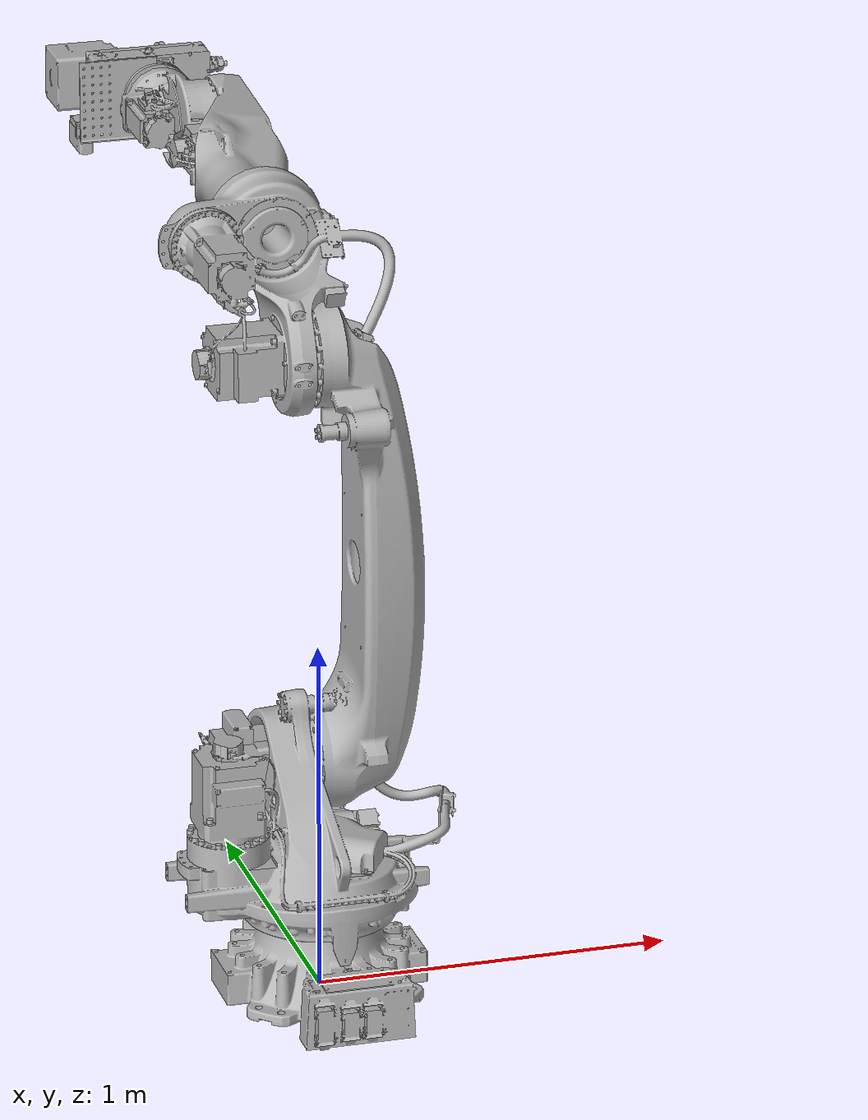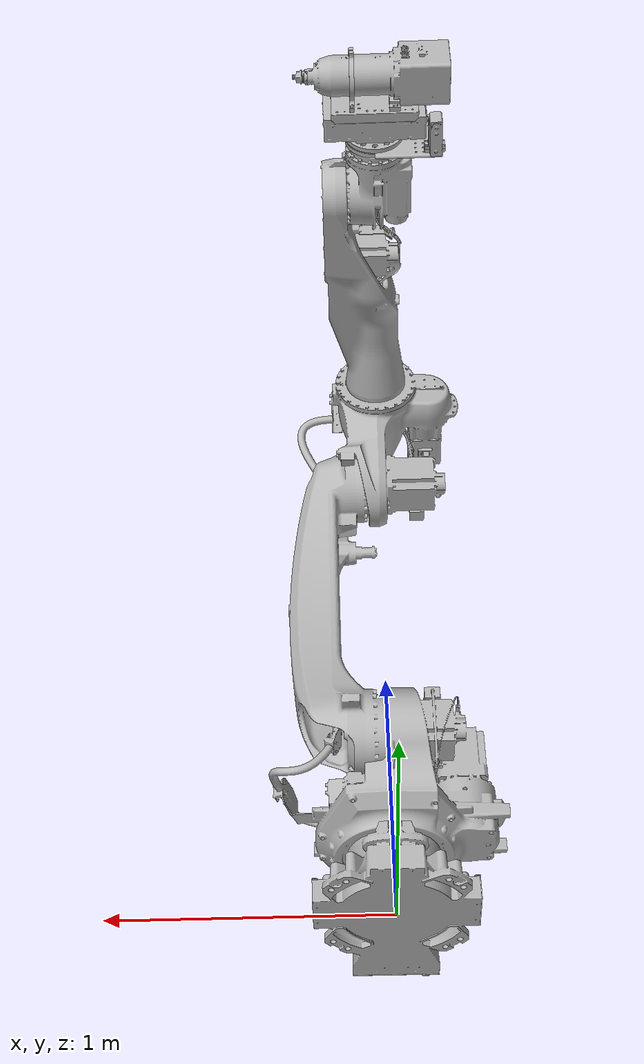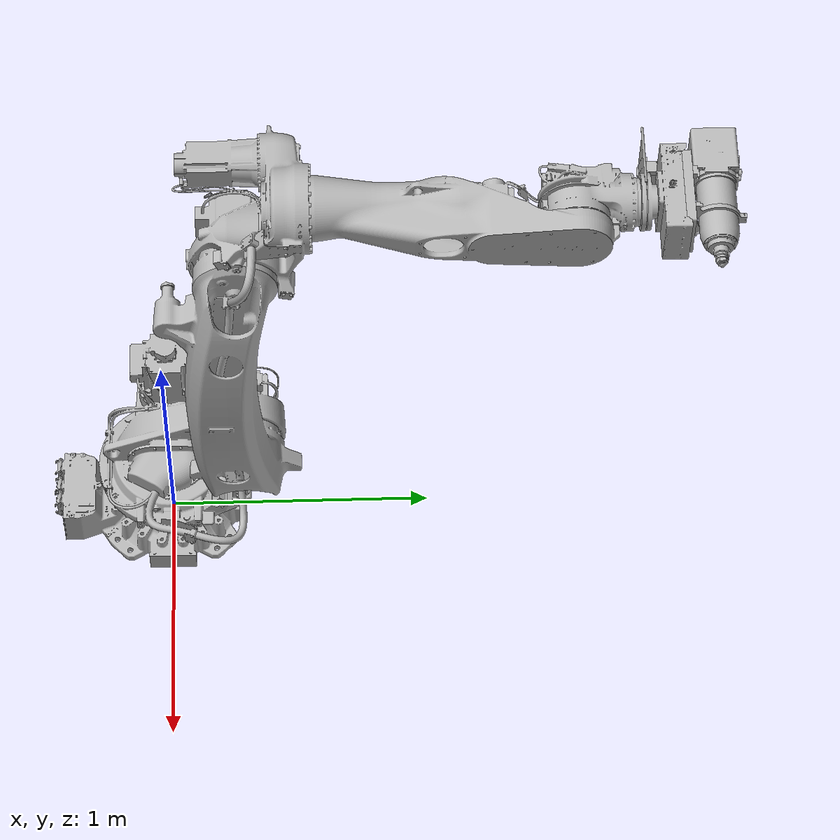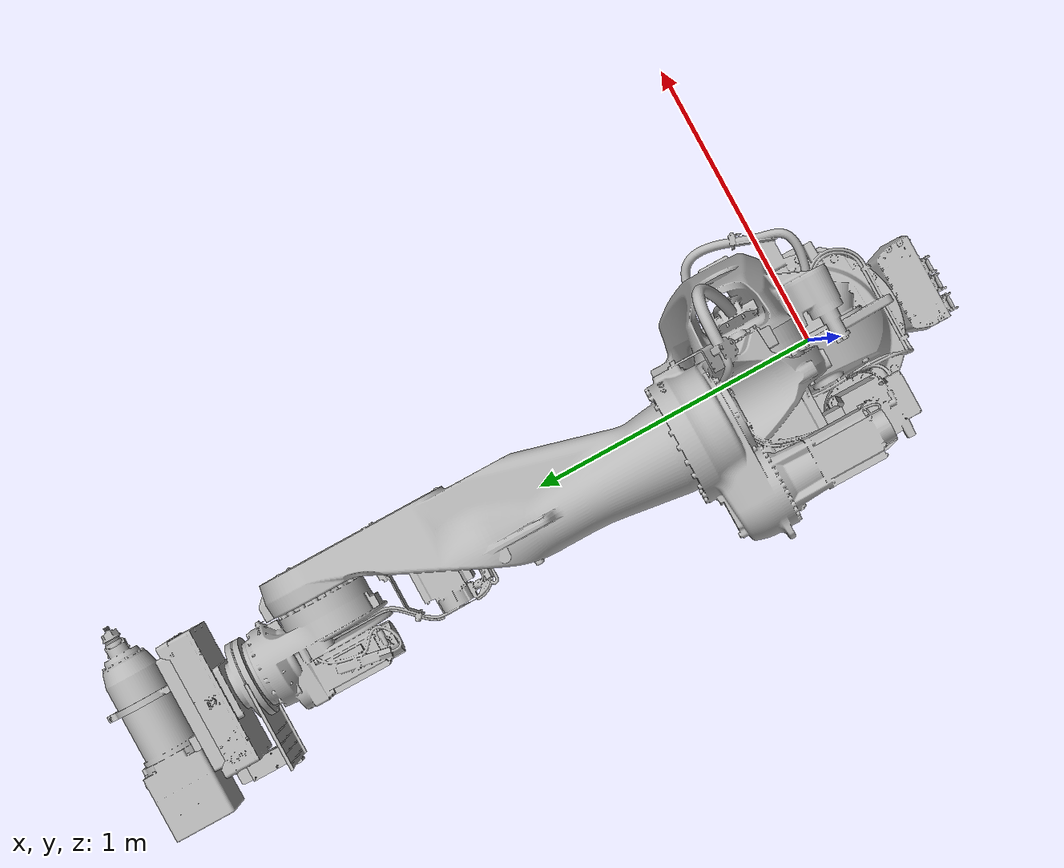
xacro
<?xml version="1.0" ?>
<robot name="grinding_cell_isu" xmlns:xacro="http://www.ros.org/wiki/xacro">

<xacro:include filename="$(find grinding_cell_isu_description)/urdf/materials.xacro" />
<xacro:include filename="$(find grinding_cell_isu_description)/urdf/grinding_cell_isu.ros2control" />
<xacro:include filename="$(find grinding_cell_isu_description)/urdf/grinding_cell_isu.gazebo" />
<link name="base_link">
  <inertial>
    <origin xyz="-0.00023938782124240985 -0.05347092729023973 0.09442085603896697" rpy="0 0 0"/>
    <mass value="333.98868689360233"/>
    <inertia ixx="11.71113" iyy="5.576834" izz="14.859734" ixy="-0.036643" iyz="-0.338236" ixz="0.000917"/>
  </inertial>
  <visual>
    <origin xyz="0 0 0" rpy="0 0 0"/>
    <geometry>
      <mesh filename="file://$(find grinding_cell_isu_description)/meshes/base_link.stl" scale="0.001 0.001 0.001"/>
    </geometry>
    <material name="silver"/>
  </visual>
  <collision>
    <origin xyz="0 0 0" rpy="0 0 0"/>
    <geometry>
      <mesh filename="file://$(find grinding_cell_isu_description)/meshes/base_link.stl" scale="0.001 0.001 0.001"/>
    </geometry>
  </collision>
</link>

<link name="link1_1">
  <inertial>
    <origin xyz="-0.06653895264969915 0.06394271891497666 0.1778261342766808" rpy="0 0 0"/>
    <mass value="566.6327954645911"/>
    <inertia ixx="22.181539" iyy="20.935752" izz="25.337877" ixy="-0.577338" iyz="-3.28915" ixz="3.491837"/>
  </inertial>
  <visual>
    <origin xyz="-0.0 -0.0 -0.234" rpy="0 0 0"/>
    <geometry>
      <mesh filename="file://$(find grinding_cell_isu_description)/meshes/link1_1.stl" scale="0.001 0.001 0.001"/>
    </geometry>
    <material name="silver"/>
  </visual>
  <collision>
    <origin xyz="-0.0 -0.0 -0.234" rpy="0 0 0"/>
    <geometry>
      <mesh filename="file://$(find grinding_cell_isu_description)/meshes/link1_1.stl" scale="0.001 0.001 0.001"/>
    </geometry>
  </collision>
</link>

<link name="link2_1">
  <inertial>
    <origin xyz="0.20305394831555346 -0.03912073071835348 0.5971409899589974" rpy="0 0 0"/>
    <mass value="9.798994384257494"/>
    <inertia ixx="1.764748" iyy="1.76245" izz="0.010409" ixy="0.002422" iyz="-0.005454" ixz="-5.2e-05"/>
  </inertial>
  <visual>
    <origin xyz="-0.006 -0.3 -0.55" rpy="0 0 0"/>
    <geometry>
      <mesh filename="file://$(find grinding_cell_isu_description)/meshes/link2_1.stl" scale="0.001 0.001 0.001"/>
    </geometry>
    <material name="silver"/>
  </visual>
  <collision>
    <origin xyz="-0.006 -0.3 -0.55" rpy="0 0 0"/>
    <geometry>
      <mesh filename="file://$(find grinding_cell_isu_description)/meshes/link2_1.stl" scale="0.001 0.001 0.001"/>
    </geometry>
  </collision>
</link>

<link name="link3_1">
  <inertial>
    <origin xyz="-0.19206722458894557 -0.027909362871369525 0.10530362485936107" rpy="0 0 0"/>
    <mass value="71.44558552488685"/>
    <inertia ixx="1.83895" iyy="2.211138" izz="1.018852" ixy="-0.1937" iyz="0.275653" ixz="0.114685"/>
  </inertial>
  <visual>
    <origin xyz="-0.059 -0.3 -1.74" rpy="0 0 0"/>
    <geometry>
      <mesh filename="file://$(find grinding_cell_isu_description)/meshes/link3_1.stl" scale="0.001 0.001 0.001"/>
    </geometry>
    <material name="silver"/>
  </visual>
  <collision>
    <origin xyz="-0.059 -0.3 -1.74" rpy="0 0 0"/>
    <geometry>
      <mesh filename="file://$(find grinding_cell_isu_description)/meshes/link3_1.stl" scale="0.001 0.001 0.001"/>
    </geometry>
  </collision>
</link>

<link name="link4_1">
  <inertial>
    <origin xyz="0.08488777504484482 0.6137477335056789 0.0006002942177838477" rpy="0 0 0"/>
    <mass value="117.61031632905585"/>
    <inertia ixx="8.618509" iyy="1.178546" izz="8.933092" ixy="-1.495647" iyz="0.014729" ixz="0.006184"/>
  </inertial>
  <visual>
    <origin xyz="-0.0 -0.567 -2.04" rpy="0 0 0"/>
    <geometry>
      <mesh filename="file://$(find grinding_cell_isu_description)/meshes/link4_1.stl" scale="0.001 0.001 0.001"/>
    </geometry>
    <material name="silver"/>
  </visual>
  <collision>
    <origin xyz="-0.0 -0.567 -2.04" rpy="0 0 0"/>
    <geometry>
      <mesh filename="file://$(find grinding_cell_isu_description)/meshes/link4_1.stl" scale="0.001 0.001 0.001"/>
    </geometry>
  </collision>
</link>

<link name="link5_1">
  <inertial>
    <origin xyz="-0.10963928700693486 0.05275619945833565 0.0011382347889319355" rpy="0 0 0"/>
    <mass value="77.96532200729659"/>
    <inertia ixx="0.817944" iyy="0.496492" izz="0.936739" ixy="0.039893" iyz="0.008236" ixz="0.008649"/>
  </inertial>
  <visual>
    <origin xyz="-0.1155 -1.49 -2.04" rpy="0 0 0"/>
    <geometry>
      <mesh filename="file://$(find grinding_cell_isu_description)/meshes/link5_1.stl" scale="0.001 0.001 0.001"/>
    </geometry>
    <material name="silver"/>
  </visual>
  <collision>
    <origin xyz="-0.1155 -1.49 -2.04" rpy="0 0 0"/>
    <geometry>
      <mesh filename="file://$(find grinding_cell_isu_description)/meshes/link5_1.stl" scale="0.001 0.001 0.001"/>
    </geometry>
  </collision>
</link>

<link name="link6_1">
  <inertial>
    <origin xyz="1.0723590035471246e-06 0.007341483930386028 4.5787910352146355e-08" rpy="0 0 0"/>
    <mass value="3.3223589685623236"/>
    <inertia ixx="0.009251" iyy="0.018393" izz="0.00928" ixy="0.0" iyz="0.0" ixz="-0.0"/>
  </inertial>
  <visual>
    <origin xyz="-0.0015 -1.709176 -2.039823" rpy="0 0 0"/>
    <geometry>
      <mesh filename="file://$(find grinding_cell_isu_description)/meshes/link6_1.stl" scale="0.001 0.001 0.001"/>
    </geometry>
    <material name="silver"/>
  </visual>
  <collision>
    <origin xyz="-0.0015 -1.709176 -2.039823" rpy="0 0 0"/>
    <geometry>
      <mesh filename="file://$(find grinding_cell_isu_description)/meshes/link6_1.stl" scale="0.001 0.001 0.001"/>
    </geometry>
  </collision>
</link>

<link name="camera_mount_plate_1">
  <inertial>
    <origin xyz="-0.08012460137644362 0.0015023889998331263 4.578789791764848e-08" rpy="0 0 0"/>
    <mass value="1.8819916346345602"/>
    <inertia ixx="0.008766" iyy="0.023121" izz="0.014362" ixy="-1.3e-05" iyz="0.0" ixz="0.0"/>
  </inertial>
  <visual>
    <origin xyz="-0.001499 -1.725176 -2.039823" rpy="0 0 0"/>
    <geometry>
      <mesh filename="file://$(find grinding_cell_isu_description)/meshes/camera_mount_plate_1.stl" scale="0.001 0.001 0.001"/>
    </geometry>
    <material name="silver"/>
  </visual>
  <collision>
    <origin xyz="-0.001499 -1.725176 -2.039823" rpy="0 0 0"/>
    <geometry>
      <mesh filename="file://$(find grinding_cell_isu_description)/meshes/camera_mount_plate_1.stl" scale="0.001 0.001 0.001"/>
    </geometry>
  </collision>
</link>

<link name="camera_mount_robot_side_1">
  <inertial>
    <origin xyz="-0.012699518879688204 0.00781091419347435 -0.01269995416921299" rpy="0 0 0"/>
    <mass value="0.28900671545824247"/>
    <inertia ixx="4.2e-05" iyy="0.000158" izz="0.000128" ixy="-0.0" iyz="0.0" ixz="0.0"/>
  </inertial>
  <visual>
    <origin xyz="0.189001 -1.728592 -1.963623" rpy="0 0 0"/>
    <geometry>
      <mesh filename="file://$(find grinding_cell_isu_description)/meshes/camera_mount_robot_side_1.stl" scale="0.001 0.001 0.001"/>
    </geometry>
    <material name="silver"/>
  </visual>
  <collision>
    <origin xyz="0.189001 -1.728592 -1.963623" rpy="0 0 0"/>
    <geometry>
      <mesh filename="file://$(find grinding_cell_isu_description)/meshes/camera_mount_robot_side_1.stl" scale="0.001 0.001 0.001"/>
    </geometry>
  </collision>
</link>

<link name="camera_mount_camera_side_1">
  <inertial>
    <origin xyz="-0.0076195188797280045 0.05134002984332997 -3.8754179527700217e-05" rpy="0 0 0"/>
    <mass value="0.8361634896609813"/>
    <inertia ixx="0.001077" iyy="0.000223" izz="0.001217" ixy="0.0" iyz="1e-06" ixz="0.0"/>
  </inertial>
  <visual>
    <origin xyz="0.194081 -1.744213 -1.950923" rpy="0 0 0"/>
    <geometry>
      <mesh filename="file://$(find grinding_cell_isu_description)/meshes/camera_mount_camera_side_1.stl" scale="0.001 0.001 0.001"/>
    </geometry>
    <material name="silver"/>
  </visual>
  <collision>
    <origin xyz="0.194081 -1.744213 -1.950923" rpy="0 0 0"/>
    <geometry>
      <mesh filename="file://$(find grinding_cell_isu_description)/meshes/camera_mount_camera_side_1.stl" scale="0.001 0.001 0.001"/>
    </geometry>
  </collision>
</link>

<link name="pushcorp_adapter_plate_1">
  <inertial>
    <origin xyz="4.811202501983462e-07 0.014498160004371208 4.57879845150444e-08" rpy="0 0 0"/>
    <mass value="5.378742130618471"/>
    <inertia ixx="0.010695" iyy="0.020166" izz="0.010695" ixy="-0.0" iyz="0.0" ixz="0.0"/>
  </inertial>
  <visual>
    <origin xyz="-0.001499 -1.728592 -2.039823" rpy="0 0 0"/>
    <geometry>
      <mesh filename="file://$(find grinding_cell_isu_description)/meshes/pushcorp_adapter_plate_1.stl" scale="0.001 0.001 0.001"/>
    </geometry>
    <material name="silver"/>
  </visual>
  <collision>
    <origin xyz="-0.001499 -1.728592 -2.039823" rpy="0 0 0"/>
    <geometry>
      <mesh filename="file://$(find grinding_cell_isu_description)/meshes/pushcorp_adapter_plate_1.stl" scale="0.001 0.001 0.001"/>
    </geometry>
  </collision>
</link>

<link name="afd_base_1">
  <inertial>
    <origin xyz="-2.0412307203724082e-05 0.04732166606944688 9.191560594912218e-05" rpy="0 0 0"/>
    <mass value="42.10576122334246"/>
    <inertia ixx="0.172045" iyy="0.547331" izz="0.416949" ixy="1.1e-05" iyz="-1.5e-05" ixz="0.000101"/>
  </inertial>
  <visual>
    <origin xyz="-0.001499 -1.766692 -2.039823" rpy="0 0 0"/>
    <geometry>
      <mesh filename="file://$(find grinding_cell_isu_description)/meshes/afd_base_1.stl" scale="0.001 0.001 0.001"/>
    </geometry>
    <material name="silver"/>
  </visual>
  <collision>
    <origin xyz="-0.001499 -1.766692 -2.039823" rpy="0 0 0"/>
    <geometry>
      <mesh filename="file://$(find grinding_cell_isu_description)/meshes/afd_base_1.stl" scale="0.001 0.001 0.001"/>
    </geometry>
  </collision>
</link>

<link name="adf_slide_1">
  <inertial>
    <origin xyz="2.5729909938865736e-05 0.018441351058661626 4.24726317715951e-06" rpy="0 0 0"/>
    <mass value="17.042801472492954"/>
    <inertia ixx="0.060101" iyy="0.181263" izz="0.124996" ixy="-3e-06" iyz="-8e-06" ixz="2e-06"/>
  </inertial>
  <visual>
    <origin xyz="-0.001499 -1.851149 -2.039823" rpy="0 0 0"/>
    <geometry>
      <mesh filename="file://$(find grinding_cell_isu_description)/meshes/adf_slide_1.stl" scale="0.001 0.001 0.001"/>
    </geometry>
    <material name="silver"/>
  </visual>
  <collision>
    <origin xyz="-0.001499 -1.851149 -2.039823" rpy="0 0 0"/>
    <geometry>
      <mesh filename="file://$(find grinding_cell_isu_description)/meshes/adf_slide_1.stl" scale="0.001 0.001 0.001"/>
    </geometry>
  </collision>
</link>

<link name="asm02948-1_1">
  <inertial>
    <origin xyz="0.01205157797336169 0.009687634396200906 0.08255004578789227" rpy="0 0 0"/>
    <mass value="0.563626411808913"/>
    <inertia ixx="0.002201" iyy="0.002234" izz="7.9e-05" ixy="2e-06" iyz="0.0" ixz="-0.0"/>
  </inertial>
  <visual>
    <origin xyz="0.074701 -1.888872 -1.957273" rpy="0 0 0"/>
    <geometry>
      <mesh filename="file://$(find grinding_cell_isu_description)/meshes/asm02948-1_1.stl" scale="0.001 0.001 0.001"/>
    </geometry>
    <material name="silver"/>
  </visual>
  <collision>
    <origin xyz="0.074701 -1.888872 -1.957273" rpy="0 0 0"/>
    <geometry>
      <mesh filename="file://$(find grinding_cell_isu_description)/meshes/asm02948-1_1.stl" scale="0.001 0.001 0.001"/>
    </geometry>
  </collision>
</link>

<link name="asm02658-1_1">
  <inertial>
    <origin xyz="4.811202478499643e-07 0.06686082668387616 -0.08257286288885446" rpy="0 0 0"/>
    <mass value="1.0934686790796517"/>
    <inertia ixx="0.007281" iyy="0.003255" izz="0.004071" ixy="0.0" iyz="3e-06" ixz="0.0"/>
  </inertial>
  <visual>
    <origin xyz="-0.077699 -1.888872 -2.122373" rpy="0 0 0"/>
    <geometry>
      <mesh filename="file://$(find grinding_cell_isu_description)/meshes/asm02658-1_1.stl" scale="0.001 0.001 0.001"/>
    </geometry>
    <material name="silver"/>
  </visual>
  <collision>
    <origin xyz="-0.077699 -1.888872 -2.122373" rpy="0 0 0"/>
    <geometry>
      <mesh filename="file://$(find grinding_cell_isu_description)/meshes/asm02658-1_1.stl" scale="0.001 0.001 0.001"/>
    </geometry>
  </collision>
</link>

<link name="stc1015_1">
  <inertial>
    <origin xyz="0.00484854396194169 0.07891088870158902 1.7782103611807543e-07" rpy="0 0 0"/>
    <mass value="64.60780296495582"/>
    <inertia ixx="0.20806" iyy="1.146497" izz="1.147435" ixy="0.000874" iyz="-1e-06" ixz="0.0"/>
  </inertial>
  <visual>
    <origin xyz="0.063525 -1.896533 -2.039823" rpy="0 0 0"/>
    <geometry>
      <mesh filename="file://$(find grinding_cell_isu_description)/meshes/stc1015_1.stl" scale="0.001 0.001 0.001"/>
    </geometry>
    <material name="silver"/>
  </visual>
  <collision>
    <origin xyz="0.063525 -1.896533 -2.039823" rpy="0 0 0"/>
    <geometry>
      <mesh filename="file://$(find grinding_cell_isu_description)/meshes/stc1015_1.stl" scale="0.001 0.001 0.001"/>
    </geometry>
  </collision>
</link>

<link name="par04289-1_1">
  <inertial>
    <origin xyz="0.026349854723028837 -1.2419882322589615e-07 2.1479853331562992e-06" rpy="0 0 0"/>
    <mass value="0.5667113950386173"/>
    <inertia ixx="9e-05" iyy="0.000363" izz="0.000357" ixy="-0.0" iyz="0.0" ixz="-0.0"/>
  </inertial>
  <visual>
    <origin xyz="-0.204041 -1.975273 -2.039823" rpy="0 0 0"/>
    <geometry>
      <mesh filename="file://$(find grinding_cell_isu_description)/meshes/par04289-1_1.stl" scale="0.001 0.001 0.001"/>
    </geometry>
    <material name="silver"/>
  </visual>
  <collision>
    <origin xyz="-0.204041 -1.975273 -2.039823" rpy="0 0 0"/>
    <geometry>
      <mesh filename="file://$(find grinding_cell_isu_description)/meshes/par04289-1_1.stl" scale="0.001 0.001 0.001"/>
    </geometry>
  </collision>
</link>

<link name="435le_v11_1">
  <inertial>
    <origin xyz="0.01680048112155233 -0.02969440193494033 -0.03536651952343983" rpy="0 0 0"/>
    <mass value="2.9228125495632598"/>
    <inertia ixx="0.00559" iyy="0.001505" izz="0.004859" ixy="0.0" iyz="0.000125" ixz="0.0"/>
  </inertial>
  <visual>
    <origin xyz="0.218501 -1.851268 -1.941398" rpy="0 0 0"/>
    <geometry>
      <mesh filename="file://$(find grinding_cell_isu_description)/meshes/435le_v11_1.stl" scale="0.001 0.001 0.001"/>
    </geometry>
    <material name="silver"/>
  </visual>
  <collision>
    <origin xyz="0.218501 -1.851268 -1.941398" rpy="0 0 0"/>
    <geometry>
      <mesh filename="file://$(find grinding_cell_isu_description)/meshes/435le_v11_1.stl" scale="0.001 0.001 0.001"/>
    </geometry>
  </collision>
</link>

<link name="camera_color_optical_frame_1">
  <inertial>
    <origin xyz="-1.9659031546340322 -1.2700379998365463 -0.5957834672703926" rpy="0 0 0"/>
    <mass value="1.0103240413784984e-09"/>
    <inertia ixx="0.0" iyy="0.0" izz="0.0" ixy="0.0" iyz="-0.0" ixz="-0.0"/>
  </inertial>
  <visual>
    <origin xyz="-1.649498 -1.552038 -3.721086" rpy="0 0 0"/>
    <geometry>
      <mesh filename="file://$(find grinding_cell_isu_description)/meshes/camera_color_optical_frame_1.stl" scale="0.001 0.001 0.001"/>
    </geometry>
    <material name="silver"/>
  </visual>
  <collision>
    <origin xyz="-1.649498 -1.552038 -3.721086" rpy="0 0 0"/>
    <geometry>
      <mesh filename="file://$(find grinding_cell_isu_description)/meshes/camera_color_optical_frame_1.stl" scale="0.001 0.001 0.001"/>
    </geometry>
  </collision>
</link>

<joint name="joint1" type="revolute">
  <origin xyz="0.0 0.0 0.234" rpy="0 0 0"/>
  <parent link="base_link"/>
  <child link="link1_1"/>
  <axis xyz="0.0 0.0 1.0"/>
  <limit upper="2.792526" lower="-2.792526" effort="100" velocity="100"/>
</joint>

<joint name="joint2" type="revolute">
  <origin xyz="0.006 0.3 0.316" rpy="0 0 0"/>
  <parent link="link1_1"/>
  <child link="link2_1"/>
  <axis xyz="1.0 0.0 0.0"/>
  <limit upper="1.396263" lower="-1.047197" effort="100" velocity="100"/>
</joint>

<joint name="joint3" type="revolute">
  <origin xyz="0.053 0.0 1.19" rpy="0 0 0"/>
  <parent link="link2_1"/>
  <child link="link3_1"/>
  <axis xyz="-1.0 0.0 0.0"/>
  <limit upper="1.658062" lower="-1.308996" effort="100" velocity="100"/>
</joint>

<joint name="joint4" type="revolute">
  <origin xyz="-0.059 0.267 0.3" rpy="0 0 0"/>
  <parent link="link3_1"/>
  <child link="link4_1"/>
  <axis xyz="0.0 1.0 0.0"/>
  <limit upper="3.665191" lower="0.0" effort="100" velocity="100"/>
</joint>

<joint name="joint5" type="revolute">
  <origin xyz="0.1155 0.923 0.0" rpy="0 0 0"/>
  <parent link="link4_1"/>
  <child link="link5_1"/>
  <axis xyz="-1.0 0.0 0.0"/>
  <limit upper="0.036554" lower="-2.094395" effort="100" velocity="100"/>
</joint>

<joint name="joint6" type="revolute">
  <origin xyz="-0.114 0.219176 -0.000177" rpy="0 0 0"/>
  <parent link="link5_1"/>
  <child link="link6_1"/>
  <axis xyz="0.0 1.0 0.0"/>
  <limit upper="6.283185" lower="0.0" effort="100" velocity="100"/>
</joint>

<joint name="link6_to_camera_mount_plate" type="fixed">
  <origin xyz="-1e-06 0.016 0.0" rpy="0 0 0"/>
  <parent link="link6_1"/>
  <child link="camera_mount_plate_1"/>
</joint>

<joint name="camera_mount_plate_to_camera_mount_robot_side" type="fixed">
  <origin xyz="-0.1905 0.003416 -0.0762" rpy="0 0 0"/>
  <parent link="camera_mount_plate_1"/>
  <child link="camera_mount_robot_side_1"/>
</joint>

<joint name="camera_mount_robot_side_to_camera_mount_camera_side" type="fixed">
  <origin xyz="-0.00508 0.015621 -0.0127" rpy="0 0 0"/>
  <parent link="camera_mount_robot_side_1"/>
  <child link="camera_mount_camera_side_1"/>
</joint>

<joint name="camera_mount_plate_to_pushcorp_adapter_plate" type="fixed">
  <origin xyz="0.0 0.003416 0.0" rpy="0 0 0"/>
  <parent link="camera_mount_plate_1"/>
  <child link="pushcorp_adapter_plate_1"/>
</joint>

<joint name="pushcorp_adapter_plate_to_afd_base" type="fixed">
  <origin xyz="0.0 0.0381 0.0" rpy="0 0 0"/>
  <parent link="pushcorp_adapter_plate_1"/>
  <child link="afd_base_1"/>
</joint>

<joint name="afd_base_to_afd_slide" type="prismatic">
  <origin xyz="0.0 0.084457 0.0" rpy="0 0 0"/>
  <parent link="afd_base_1"/>
  <child link="adf_slide_1"/>
  <axis xyz="-1.0 0.0 -0.0"/>
  <limit upper="0.02" lower="-0.02" effort="100" velocity="100"/>
</joint>

<joint name="afd_slide_to_asm02948-1" type="fixed">
  <origin xyz="-0.0762 0.037723 -0.08255" rpy="0 0 0"/>
  <parent link="adf_slide_1"/>
  <child link="asm02948-1_1"/>
</joint>

<joint name="afd_slide_to_asm02658-1" type="fixed">
  <origin xyz="0.0762 0.037723 0.08255" rpy="0 0 0"/>
  <parent link="adf_slide_1"/>
  <child link="asm02658-1_1"/>
</joint>

<joint name="asm02948-1_to_stc1015" type="fixed">
  <origin xyz="0.011176 0.007661 0.08255" rpy="0 0 0"/>
  <parent link="asm02948-1_1"/>
  <child link="stc1015_1"/>
</joint>

<joint name="stc1015_to_par04289-1" type="fixed">
  <origin xyz="0.267566 0.07874 0.0" rpy="0 0 0"/>
  <parent link="stc1015_1"/>
  <child link="par04289-1_1"/>
</joint>

<joint name="camera_mount_camera_side_to_gemini_435_le" type="fixed">
  <origin xyz="-0.02442 0.107055 -0.009525" rpy="0 0 0"/>
  <parent link="camera_mount_camera_side_1"/>
  <child link="435le_v11_1"/>
</joint>

<joint name="gemini435le_to_camera_color_optical_frame" type="fixed">
  <origin xyz="1.867999 -0.29923 1.779688" rpy="0 0 0"/>
  <parent link="435le_v11_1"/>
  <child link="camera_color_optical_frame_1"/>
</joint>

</robot>

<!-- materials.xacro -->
<robot name="grinding_cell_isu" xmlns:xacro="http://www.ros.org/wiki/xacro" >

<material name="silver">
  <color rgba="0.700 0.700 0.700 1.000"/>
</material>

</robot>

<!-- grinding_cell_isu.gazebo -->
<robot name="grinding_cell_isu" xmlns:xacro="http://www.ros.org/wiki/xacro" >

<xacro:property name="body_color" value="Gazebo/Silver" />

<gazebo reference="base_link">
  <material>${body_color}</material>
  <mu1>0.2</mu1>
  <mu2>0.2</mu2>
  <self_collide>true</self_collide>
  <gravity>true</gravity>
</gazebo>

<gazebo reference="link1_1">
  <material>${body_color}</material>
  <mu1>0.2</mu1>
  <mu2>0.2</mu2>
  <self_collide>true</self_collide>
</gazebo>

<gazebo reference="link2_1">
  <material>${body_color}</material>
  <mu1>0.2</mu1>
  <mu2>0.2</mu2>
  <self_collide>true</self_collide>
</gazebo>

<gazebo reference="link3_1">
  <material>${body_color}</material>
  <mu1>0.2</mu1>
  <mu2>0.2</mu2>
  <self_collide>true</self_collide>
</gazebo>

<gazebo reference="link4_1">
  <material>${body_color}</material>
  <mu1>0.2</mu1>
  <mu2>0.2</mu2>
  <self_collide>true</self_collide>
</gazebo>

<gazebo reference="link5_1">
  <material>${body_color}</material>
  <mu1>0.2</mu1>
  <mu2>0.2</mu2>
  <self_collide>true</self_collide>
</gazebo>

<gazebo reference="link6_1">
  <material>${body_color}</material>
  <mu1>0.2</mu1>
  <mu2>0.2</mu2>
  <self_collide>true</self_collide>
</gazebo>

<gazebo reference="camera_mount_plate_1">
  <material>${body_color}</material>
  <mu1>0.2</mu1>
  <mu2>0.2</mu2>
  <self_collide>true</self_collide>
</gazebo>

<gazebo reference="camera_mount_robot_side_1">
  <material>${body_color}</material>
  <mu1>0.2</mu1>
  <mu2>0.2</mu2>
  <self_collide>true</self_collide>
</gazebo>

<gazebo reference="camera_mount_camera_side_1">
  <material>${body_color}</material>
  <mu1>0.2</mu1>
  <mu2>0.2</mu2>
  <self_collide>true</self_collide>
</gazebo>

<gazebo reference="pushcorp_adapter_plate_1">
  <material>${body_color}</material>
  <mu1>0.2</mu1>
  <mu2>0.2</mu2>
  <self_collide>true</self_collide>
</gazebo>

<gazebo reference="afd_base_1">
  <material>${body_color}</material>
  <mu1>0.2</mu1>
  <mu2>0.2</mu2>
  <self_collide>true</self_collide>
</gazebo>

<gazebo reference="adf_slide_1">
  <material>${body_color}</material>
  <mu1>0.2</mu1>
  <mu2>0.2</mu2>
  <self_collide>true</self_collide>
</gazebo>

<gazebo reference="asm02948-1_1">
  <material>${body_color}</material>
  <mu1>0.2</mu1>
  <mu2>0.2</mu2>
  <self_collide>true</self_collide>
</gazebo>

<gazebo reference="asm02658-1_1">
  <material>${body_color}</material>
  <mu1>0.2</mu1>
  <mu2>0.2</mu2>
  <self_collide>true</self_collide>
</gazebo>

<gazebo reference="stc1015_1">
  <material>${body_color}</material>
  <mu1>0.2</mu1>
  <mu2>0.2</mu2>
  <self_collide>true</self_collide>
</gazebo>

<gazebo reference="par04289-1_1">
  <material>${body_color}</material>
  <mu1>0.2</mu1>
  <mu2>0.2</mu2>
  <self_collide>true</self_collide>
</gazebo>

<gazebo reference="435le_v11_1">
  <material>${body_color}</material>
  <mu1>0.2</mu1>
  <mu2>0.2</mu2>
  <self_collide>true</self_collide>
</gazebo>

<gazebo reference="camera_color_optical_frame_1">
  <material>${body_color}</material>
  <mu1>0.2</mu1>
  <mu2>0.2</mu2>
  <self_collide>true</self_collide>
</gazebo>

</robot>
